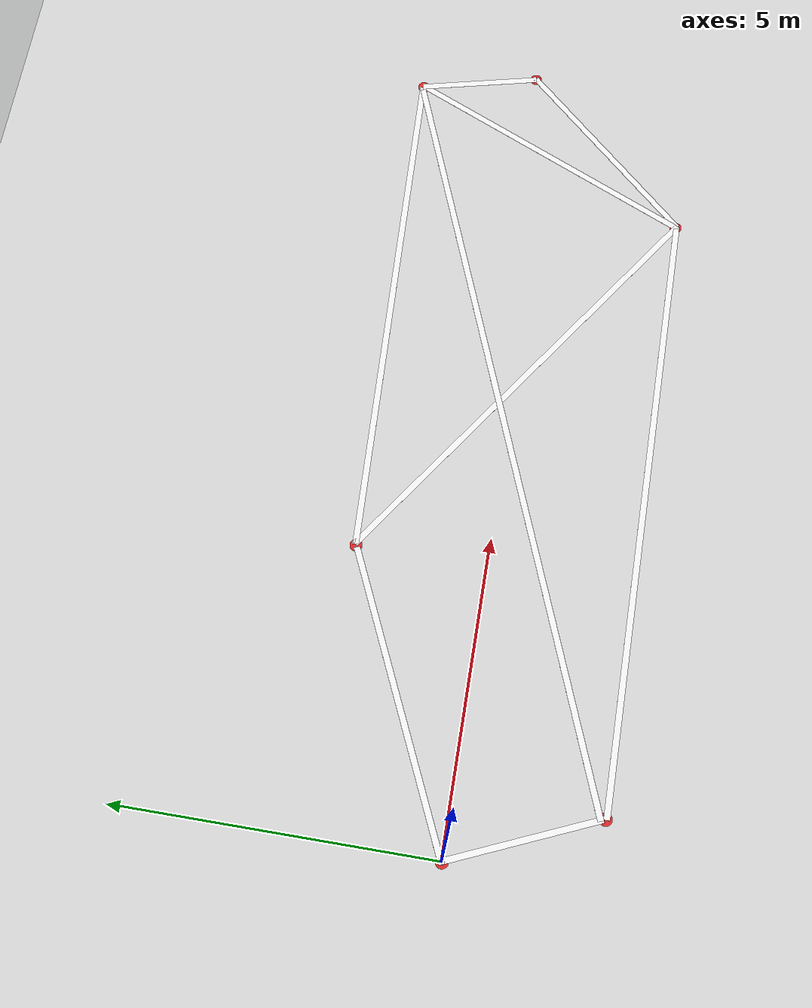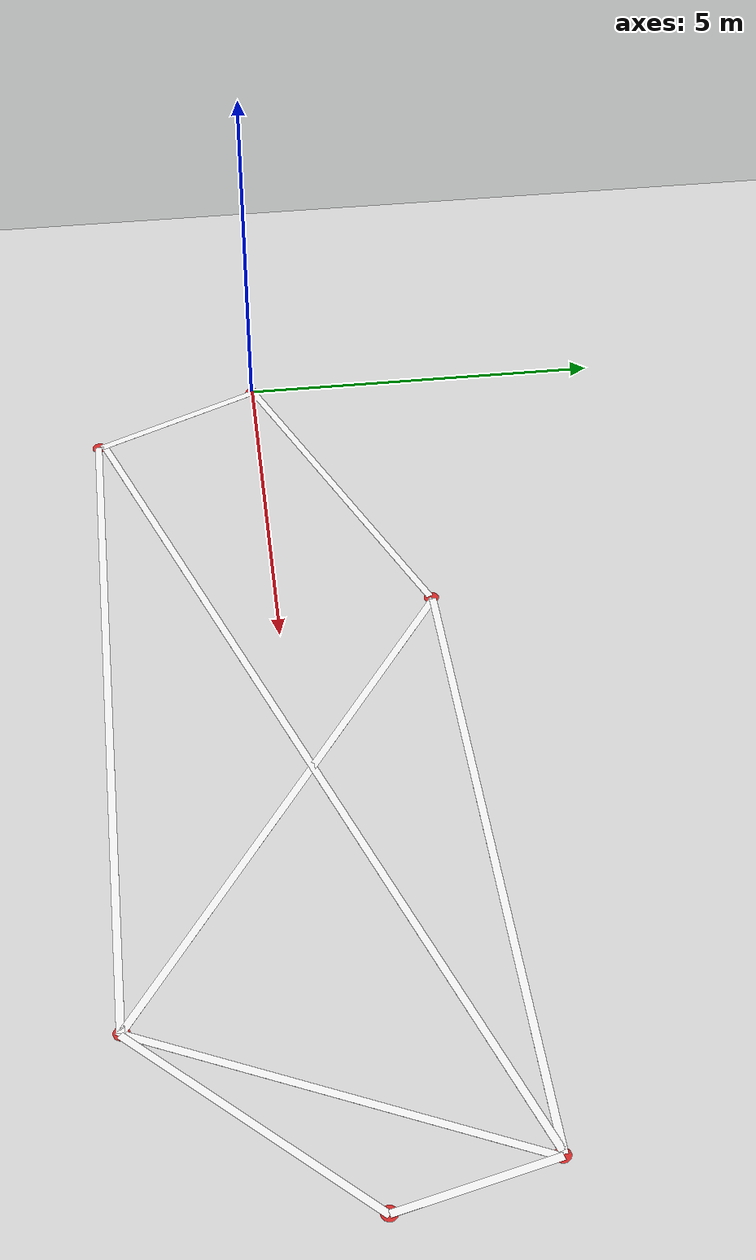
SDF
<?xml version="1.0" ?>
<sdf version="1.4">
  <world name="default">
    <include>
      <uri>model://ground_plane</uri>
    </include>

    <include>
      <uri>model://sun</uri>
    </include>

    <include>
      <uri>model://dijkstra-route</uri>
      <name>dijkstra_route</name>
      <pose>7.548882961273193 0.05127263814210892 0 0 0 0</pose>
    </include>

  </world>
</sdf>

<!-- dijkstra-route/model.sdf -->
<sdf version='1.7'>
  <model name='dijkstra-route'>
    <link name='link_0'>
      <inertial>
        <mass>1</mass>
        <inertia>
          <ixx>0.145833</ixx>
          <ixy>0</ixy>
          <ixz>0</ixz>
          <iyy>0.145833</iyy>
          <iyz>0</iyz>
          <izz>0.125</izz>
        </inertia>
        <pose>0 0 0 0 -0 0</pose>
      </inertial>
      <pose>-6.54614 -2.32674 0 0 -0 0</pose>
      <gravity>1</gravity>
      <self_collide>0</self_collide>
      <kinematic>0</kinematic>
      <enable_wind>0</enable_wind>
      <visual name='visual'>
        <pose>0 0 0 0 -0 0</pose>
        <geometry>
          <cylinder>
            <radius>0.1</radius>
            <length>0.0001</length>
          </cylinder>
        </geometry>
        <material>
          <lighting>1</lighting>
          <script>
            <uri>file://media/materials/scripts/gazebo.material</uri>
            <name>Gazebo/Red</name>
          </script>
          <shader type='pixel'>
            <normal_map>__default__</normal_map>
          </shader>
          <ambient>1 0 0 1</ambient>
          <diffuse>1 0 0 1</diffuse>
          <specular>1 0 0 1</specular>
          <emissive>1 0 0 1</emissive>
        </material>
        <transparency>0</transparency>
        <cast_shadows>1</cast_shadows>
      </visual>
    </link>
    <link name='link_0_clone'>
      <inertial>
        <mass>1</mass>
        <inertia>
          <ixx>0.145833</ixx>
          <ixy>0</ixy>
          <ixz>0</ixz>
          <iyy>0.145833</iyy>
          <iyz>0</iyz>
          <izz>0.125</izz>
        </inertia>
        <pose>0 0 0 0 -0 0</pose>
      </inertial>
      <pose>-7.54614 -0.051742 0 0 -0 0</pose>
      <gravity>1</gravity>
      <self_collide>0</self_collide>
      <kinematic>0</kinematic>
      <enable_wind>0</enable_wind>
      <visual name='visual'>
        <pose>0 0 0 0 -0 0</pose>
        <geometry>
          <cylinder>
            <radius>0.1</radius>
            <length>0.0001</length>
          </cylinder>
        </geometry>
        <material>
          <lighting>1</lighting>
          <script>
            <uri>file://media/materials/scripts/gazebo.material</uri>
            <name>Gazebo/Red</name>
          </script>
          <shader type='pixel'>
            <normal_map>__default__</normal_map>
          </shader>
          <ambient>1 0 0 1</ambient>
          <diffuse>1 0 0 1</diffuse>
          <specular>1 0 0 1</specular>
          <emissive>1 0 0 1</emissive>
        </material>
        <transparency>0</transparency>
        <cast_shadows>1</cast_shadows>
      </visual>
    </link>
    <link name='link_0_clone_clone'>
      <inertial>
        <mass>1</mass>
        <inertia>
          <ixx>0.145833</ixx>
          <ixy>0</ixy>
          <ixz>0</ixz>
          <iyy>0.145833</iyy>
          <iyz>0</iyz>
          <izz>0.125</izz>
        </inertia>
        <pose>0 0 0 0 -0 0</pose>
      </inertial>
      <pose>-2.99614 2.02426 0 0 -0 0</pose>
      <gravity>1</gravity>
      <self_collide>0</self_collide>
      <kinematic>0</kinematic>
      <enable_wind>0</enable_wind>
      <visual name='visual'>
        <pose>0 0 0 0 -0 0</pose>
        <geometry>
          <cylinder>
            <radius>0.1</radius>
            <length>0.0001</length>
          </cylinder>
        </geometry>
        <material>
          <lighting>1</lighting>
          <script>
            <uri>file://media/materials/scripts/gazebo.material</uri>
            <name>Gazebo/Red</name>
          </script>
          <shader type='pixel'>
            <normal_map>__default__</normal_map>
          </shader>
          <ambient>1 0 0 1</ambient>
          <diffuse>1 0 0 1</diffuse>
          <specular>1 0 0 1</specular>
          <emissive>1 0 0 1</emissive>
        </material>
        <transparency>0</transparency>
        <cast_shadows>1</cast_shadows>
      </visual>
    </link>
    <link name='link_0_clone_clone_0'>
      <inertial>
        <mass>1</mass>
        <inertia>
          <ixx>0.145833</ixx>
          <ixy>0</ixy>
          <ixz>0</ixz>
          <iyy>0.145833</iyy>
          <iyz>0</iyz>
          <izz>0.125</izz>
        </inertia>
        <pose>0 0 0 0 -0 0</pose>
      </inertial>
      <pose>3.45386 -2.32674 0 0 -0 0</pose>
      <gravity>1</gravity>
      <self_collide>0</self_collide>
      <kinematic>0</kinematic>
      <enable_wind>0</enable_wind>
      <visual name='visual'>
        <pose>0 0 0 0 -0 0</pose>
        <geometry>
          <cylinder>
            <radius>0.1</radius>
            <length>0.0001</length>
          </cylinder>
        </geometry>
        <material>
          <lighting>1</lighting>
          <script>
            <uri>file://media/materials/scripts/gazebo.material</uri>
            <name>Gazebo/Red</name>
          </script>
          <shader type='pixel'>
            <normal_map>__default__</normal_map>
          </shader>
          <ambient>1 0 0 1</ambient>
          <diffuse>1 0 0 1</diffuse>
          <specular>1 0 0 1</specular>
          <emissive>1 0 0 1</emissive>
        </material>
        <transparency>0</transparency>
        <cast_shadows>1</cast_shadows>
      </visual>
    </link>
    <link name='link_0_clone_clone_1'>
      <inertial>
        <mass>1</mass>
        <inertia>
          <ixx>0.145833</ixx>
          <ixy>0</ixy>
          <ixz>0</ixz>
          <iyy>0.145833</iyy>
          <iyz>0</iyz>
          <izz>0.125</izz>
        </inertia>
        <pose>0 0 0 0 -0 0</pose>
      </inertial>
      <pose>5.52886 2.32326 0 0 -0 0</pose>
      <gravity>1</gravity>
      <self_collide>0</self_collide>
      <kinematic>0</kinematic>
      <enable_wind>0</enable_wind>
      <visual name='visual'>
        <pose>0 0 0 0 -0 0</pose>
        <geometry>
          <cylinder>
            <radius>0.1</radius>
            <length>0.0001</length>
          </cylinder>
        </geometry>
        <material>
          <lighting>1</lighting>
          <script>
            <uri>file://media/materials/scripts/gazebo.material</uri>
            <name>Gazebo/Red</name>
          </script>
          <shader type='pixel'>
            <normal_map>__default__</normal_map>
          </shader>
          <ambient>1 0 0 1</ambient>
          <diffuse>1 0 0 1</diffuse>
          <specular>1 0 0 1</specular>
          <emissive>1 0 0 1</emissive>
        </material>
        <transparency>0</transparency>
        <cast_shadows>1</cast_shadows>
      </visual>
    </link>
    <link name='link_0_clone_clone_2'>
      <inertial>
        <mass>1</mass>
        <inertia>
          <ixx>0.145833</ixx>
          <ixy>0</ixy>
          <ixz>0</ixz>
          <iyy>0.145833</iyy>
          <iyz>0</iyz>
          <izz>0.125</izz>
        </inertia>
        <pose>0 0 0 0 -0 0</pose>
      </inertial>
      <pose>6.00386 0.398258 0 0 -0 0</pose>
      <gravity>1</gravity>
      <self_collide>0</self_collide>
      <kinematic>0</kinematic>
      <enable_wind>0</enable_wind>
      <visual name='visual'>
        <pose>0 0 0 0 -0 0</pose>
        <geometry>
          <cylinder>
            <radius>0.1</radius>
            <length>0.0001</length>
          </cylinder>
        </geometry>
        <material>
          <lighting>1</lighting>
          <script>
            <uri>file://media/materials/scripts/gazebo.material</uri>
            <name>Gazebo/Red</name>
          </script>
          <shader type='pixel'>
            <normal_map>__default__</normal_map>
          </shader>
          <ambient>1 0 0 1</ambient>
          <diffuse>1 0 0 1</diffuse>
          <specular>1 0 0 1</specular>
          <emissive>1 0 0 1</emissive>
        </material>
        <transparency>0</transparency>
        <cast_shadows>1</cast_shadows>
      </visual>
    </link>
    <link name='link_1'>
      <inertial>
        <mass>1</mass>
        <inertia>
          <ixx>0.166667</ixx>
          <ixy>0</ixy>
          <ixz>0</ixz>
          <iyy>0.166667</iyy>
          <iyz>0</iyz>
          <izz>0.166667</izz>
        </inertia>
        <pose>0 0 0 0 -0 0</pose>
      </inertial>
      <pose>-7.05107 -1.15346 0 0 0 -1.15876</pose>
      <gravity>1</gravity>
      <self_collide>0</self_collide>
      <kinematic>0</kinematic>
      <enable_wind>0</enable_wind>
      <visual name='visual'>
        <pose>0 0 0 0 -0 0</pose>
        <geometry>
          <box>
            <size>2.5 0.1 0.001</size>
          </box>
        </geometry>
        <material>
          <lighting>1</lighting>
          <script>
            <uri>file://media/materials/scripts/gazebo.material</uri>
            <name>Gazebo/White</name>
          </script>
          <shader type='pixel'>
            <normal_map>__default__</normal_map>
          </shader>
          <ambient>1 1 1 1</ambient>
          <diffuse>1 1 1 1</diffuse>
          <specular>0 0 0.1 1</specular>
          <emissive>0 0 0 1</emissive>
        </material>
        <transparency>0</transparency>
        <cast_shadows>1</cast_shadows>
      </visual>
    </link>
    <link name='link_1_clone'>
      <inertial>
        <mass>1</mass>
        <inertia>
          <ixx>0.166667</ixx>
          <ixy>0</ixy>
          <ixz>0</ixz>
          <iyy>0.166667</iyy>
          <iyz>0</iyz>
          <izz>0.166667</izz>
        </inertia>
        <pose>0 0 0 0 -0 0</pose>
      </inertial>
      <pose>-5.30076 0.978438 0 0 -0 0.424362</pose>
      <gravity>1</gravity>
      <self_collide>0</self_collide>
      <kinematic>0</kinematic>
      <enable_wind>0</enable_wind>
      <visual name='visual'>
        <pose>0 0 0 0 -0 0</pose>
        <geometry>
          <box>
            <size>5 0.1 0.001</size>
          </box>
        </geometry>
        <material>
          <lighting>1</lighting>
          <script>
            <uri>file://media/materials/scripts/gazebo.material</uri>
            <name>Gazebo/White</name>
          </script>
          <shader type='pixel'>
            <normal_map>__default__</normal_map>
          </shader>
          <ambient>1 1 1 1</ambient>
          <diffuse>1 1 1 1</diffuse>
          <specular>0 0 0 1</specular>
          <emissive>0 0 0 1</emissive>
        </material>
        <transparency>0</transparency>
        <cast_shadows>1</cast_shadows>
      </visual>
    </link>
    <link name='link_1_clone_0'>
      <inertial>
        <mass>1</mass>
        <inertia>
          <ixx>0.166667</ixx>
          <ixy>0</ixy>
          <ixz>0</ixz>
          <iyy>0.166667</iyy>
          <iyz>0</iyz>
          <izz>0.166667</izz>
        </inertia>
        <pose>0 0 0 0 -0 0</pose>
      </inertial>
      <pose>-1.5547 -2.34205 0 0 -0 0</pose>
      <gravity>1</gravity>
      <self_collide>0</self_collide>
      <kinematic>0</kinematic>
      <enable_wind>0</enable_wind>
      <visual name='visual'>
        <pose>0 0 0 0 -0 0</pose>
        <geometry>
          <box>
            <size>10 0.1 0.001</size>
          </box>
        </geometry>
        <material>
          <lighting>1</lighting>
          <script>
            <uri>file://media/materials/scripts/gazebo.material</uri>
            <name>Gazebo/White</name>
          </script>
          <shader type='vertex'>
            <normal_map>__default__</normal_map>
          </shader>
          <ambient>1 1 1 1</ambient>
          <diffuse>1 1 1 1</diffuse>
          <specular>0 0 0.1 1</specular>
          <emissive>0 0 0 0.1</emissive>
        </material>
        <transparency>0</transparency>
        <cast_shadows>1</cast_shadows>
      </visual>
    </link>
    <link name='link_1_clone_0_clone'>
      <inertial>
        <mass>1</mass>
        <inertia>
          <ixx>0.166667</ixx>
          <ixy>0</ixy>
          <ixz>0</ixz>
          <iyy>0.166667</iyy>
          <iyz>0</iyz>
          <izz>0.166667</izz>
        </inertia>
        <pose>0 0 0 0 -0 0</pose>
      </inertial>
      <pose>0.256313 -0.154429 0 0 0 -0.598291</pose>
      <gravity>1</gravity>
      <self_collide>0</self_collide>
      <kinematic>0</kinematic>
      <enable_wind>0</enable_wind>
      <visual name='visual'>
        <pose>0 0 0 0 -0 0</pose>
        <geometry>
          <box>
            <size>7.825 0.1 0.001</size>
          </box>
        </geometry>
        <material>
          <lighting>1</lighting>
          <script>
            <uri>file://media/materials/scripts/gazebo.material</uri>
            <name>Gazebo/White</name>
          </script>
          <shader type='pixel'>
            <normal_map>__default__</normal_map>
          </shader>
          <ambient>1 1 1 1</ambient>
          <diffuse>1 1 1 1</diffuse>
          <specular>0 0 0 1</specular>
          <emissive>0 0 0 1</emissive>
        </material>
        <transparency>0</transparency>
        <cast_shadows>1</cast_shadows>
      </visual>
    </link>
    <link name='link_1_clone_0_clone_0'>
      <inertial>
        <mass>1</mass>
        <inertia>
          <ixx>0.166667</ixx>
          <ixy>0</ixy>
          <ixz>0</ixz>
          <iyy>0.166667</iyy>
          <iyz>0</iyz>
          <izz>0.166667</izz>
        </inertia>
        <pose>0 0 0 0 -0 0</pose>
      </inertial>
      <pose>-0.553756 0.037031 0 0 -0 0.363917</pose>
      <gravity>1</gravity>
      <self_collide>0</self_collide>
      <kinematic>0</kinematic>
      <enable_wind>0</enable_wind>
      <visual name='visual'>
        <pose>0 0 0 0 -0 0</pose>
        <geometry>
          <box>
            <size>12.9 0.1 0.001</size>
          </box>
        </geometry>
        <material>
          <lighting>1</lighting>
          <script>
            <uri>file://media/materials/scripts/gazebo.material</uri>
            <name>Gazebo/White</name>
          </script>
          <shader type='pixel'>
            <normal_map>__default__</normal_map>
          </shader>
          <ambient>1 1 1 1</ambient>
          <diffuse>1 1 1 1</diffuse>
          <specular>0 0 0.1 1</specular>
          <emissive>0 0 0 1</emissive>
        </material>
        <transparency>0</transparency>
        <cast_shadows>1</cast_shadows>
      </visual>
    </link>
    <link name='link_1_clone_0_clone_1'>
      <inertial>
        <mass>1</mass>
        <inertia>
          <ixx>0.166667</ixx>
          <ixy>0</ixy>
          <ixz>0</ixz>
          <iyy>0.166667</iyy>
          <iyz>0</iyz>
          <izz>0.166667</izz>
        </inertia>
        <pose>0 0 0 0 -0 0</pose>
      </inertial>
      <pose>1.27224 2.18968 0 0 -0 0.035617</pose>
      <gravity>1</gravity>
      <self_collide>0</self_collide>
      <kinematic>0</kinematic>
      <enable_wind>0</enable_wind>
      <visual name='visual'>
        <pose>0 0 0 0 -0 0</pose>
        <geometry>
          <box>
            <size>8.5 0.1 0.001</size>
          </box>
        </geometry>
        <material>
          <lighting>1</lighting>
          <script>
            <uri>file://media/materials/scripts/gazebo.material</uri>
            <name>Gazebo/White</name>
          </script>
          <shader type='pixel'>
            <normal_map>__default__</normal_map>
          </shader>
          <ambient>1 1 1 1</ambient>
          <diffuse>1 1 1 1</diffuse>
          <specular>0 0 0 1</specular>
          <emissive>0 0 0 0.1</emissive>
        </material>
        <transparency>0</transparency>
        <cast_shadows>1</cast_shadows>
      </visual>
    </link>
    <link name='link_1_clone_0_clone_2'>
      <inertial>
        <mass>1</mass>
        <inertia>
          <ixx>0.166667</ixx>
          <ixy>0</ixy>
          <ixz>0</ixz>
          <iyy>0.166667</iyy>
          <iyz>0</iyz>
          <izz>0.166667</izz>
        </inertia>
        <pose>0 0 0 0 -0 0</pose>
      </inertial>
      <pose>4.50989 0.008817 0 0 -0 1.14903</pose>
      <gravity>1</gravity>
      <self_collide>0</self_collide>
      <kinematic>0</kinematic>
      <enable_wind>0</enable_wind>
      <visual name='visual'>
        <pose>0 0 0 0 -0 0</pose>
        <geometry>
          <box>
            <size>5.05 0.1 0.001</size>
          </box>
        </geometry>
        <material>
          <lighting>1</lighting>
          <script>
            <uri>file://media/materials/scripts/gazebo.material</uri>
            <name>Gazebo/White</name>
          </script>
          <shader type='pixel'>
            <normal_map>__default__</normal_map>
          </shader>
          <ambient>1 1 1 1</ambient>
          <diffuse>1 1 1 1</diffuse>
          <specular>0 0 0 1</specular>
          <emissive>0 0 0 1</emissive>
        </material>
        <transparency>0</transparency>
        <cast_shadows>1</cast_shadows>
      </visual>
    </link>
    <link name='link_1_clone_0_clone_2_clone'>
      <inertial>
        <mass>1</mass>
        <inertia>
          <ixx>0.166667</ixx>
          <ixy>0</ixy>
          <ixz>0</ixz>
          <iyy>0.166667</iyy>
          <iyz>0</iyz>
          <izz>0.166667</izz>
        </inertia>
        <pose>0 0 0 0 -0 0</pose>
      </inertial>
      <pose>5.77473 1.36854 0 0 -0 1.80841</pose>
      <gravity>1</gravity>
      <self_collide>0</self_collide>
      <kinematic>0</kinematic>
      <enable_wind>0</enable_wind>
      <visual name='visual'>
        <pose>0 0 0 0 -0 0</pose>
        <geometry>
          <box>
            <size>2 0.1 0.001</size>
          </box>
        </geometry>
        <material>
          <lighting>1</lighting>
          <script>
            <uri>file://media/materials/scripts/gazebo.material</uri>
            <name>Gazebo/White</name>
          </script>
          <shader type='pixel'>
            <normal_map>__default__</normal_map>
          </shader>
          <ambient>1 1 1 1</ambient>
          <diffuse>1 1 1 1</diffuse>
          <specular>0 0 0 1</specular>
          <emissive>0 0 0 0.1</emissive>
        </material>
        <transparency>0</transparency>
        <cast_shadows>1</cast_shadows>
      </visual>
    </link>
    <link name='link_1_clone_0_clone_2_clone_clone'>
      <inertial>
        <mass>1</mass>
        <inertia>
          <ixx>0.166667</ixx>
          <ixy>0</ixy>
          <ixz>0</ixz>
          <iyy>0.166667</iyy>
          <iyz>0</iyz>
          <izz>0.166667</izz>
        </inertia>
        <pose>0 0 0 0 -0 0</pose>
      </inertial>
      <pose>4.74896 -0.973133 0 0 -0 0.823165</pose>
      <gravity>1</gravity>
      <self_collide>0</self_collide>
      <kinematic>0</kinematic>
      <enable_wind>0</enable_wind>
      <visual name='visual'>
        <pose>0 0 0 0 -0 0</pose>
        <geometry>
          <box>
            <size>3.75 0.1 0.001</size>
          </box>
        </geometry>
        <material>
          <lighting>1</lighting>
          <script>
            <uri>file://media/materials/scripts/gazebo.material</uri>
            <name>Gazebo/White</name>
          </script>
          <shader type='pixel'>
            <normal_map>__default__</normal_map>
          </shader>
          <ambient>1 1 1 1</ambient>
          <diffuse>1 1 1 1</diffuse>
          <specular>0 0 0 1</specular>
          <emissive>0 0 0 0.1</emissive>
        </material>
        <transparency>0</transparency>
        <cast_shadows>1</cast_shadows>
      </visual>
    </link>
    <static>1</static>
    <allow_auto_disable>1</allow_auto_disable>
  </model>
</sdf>
